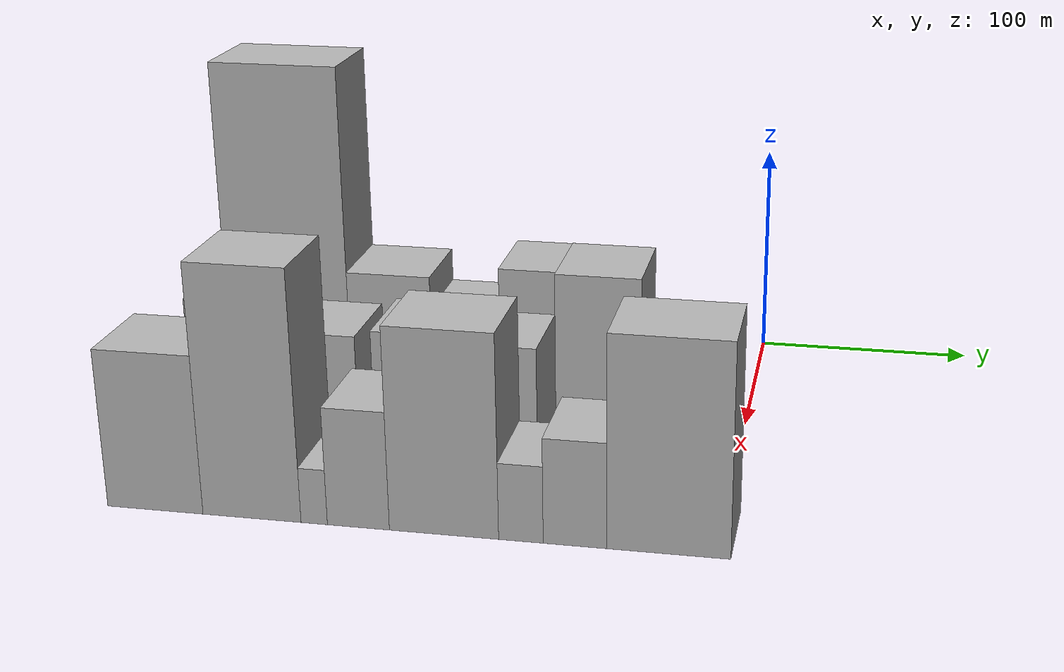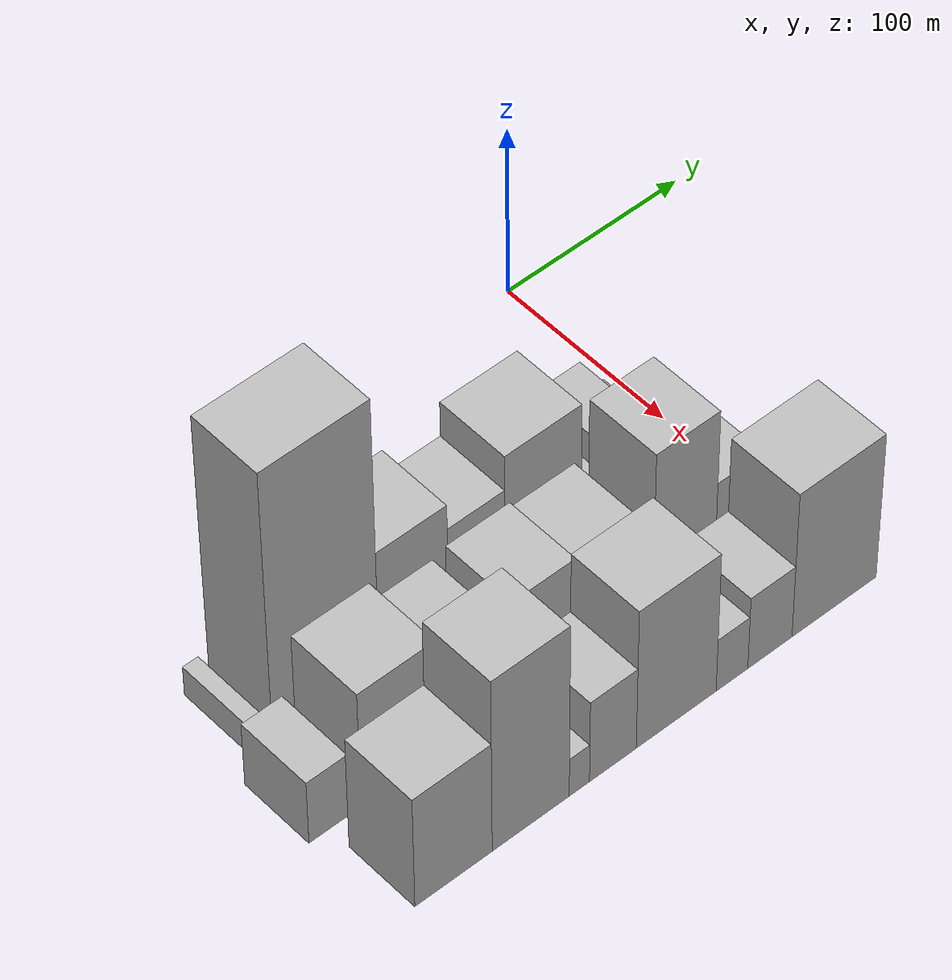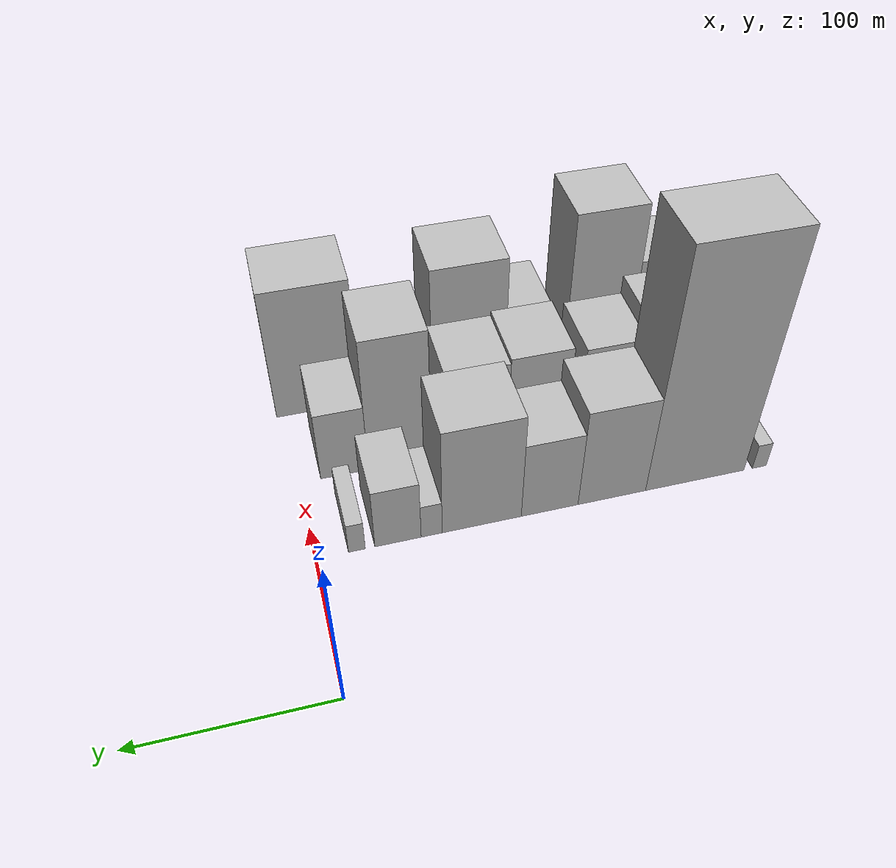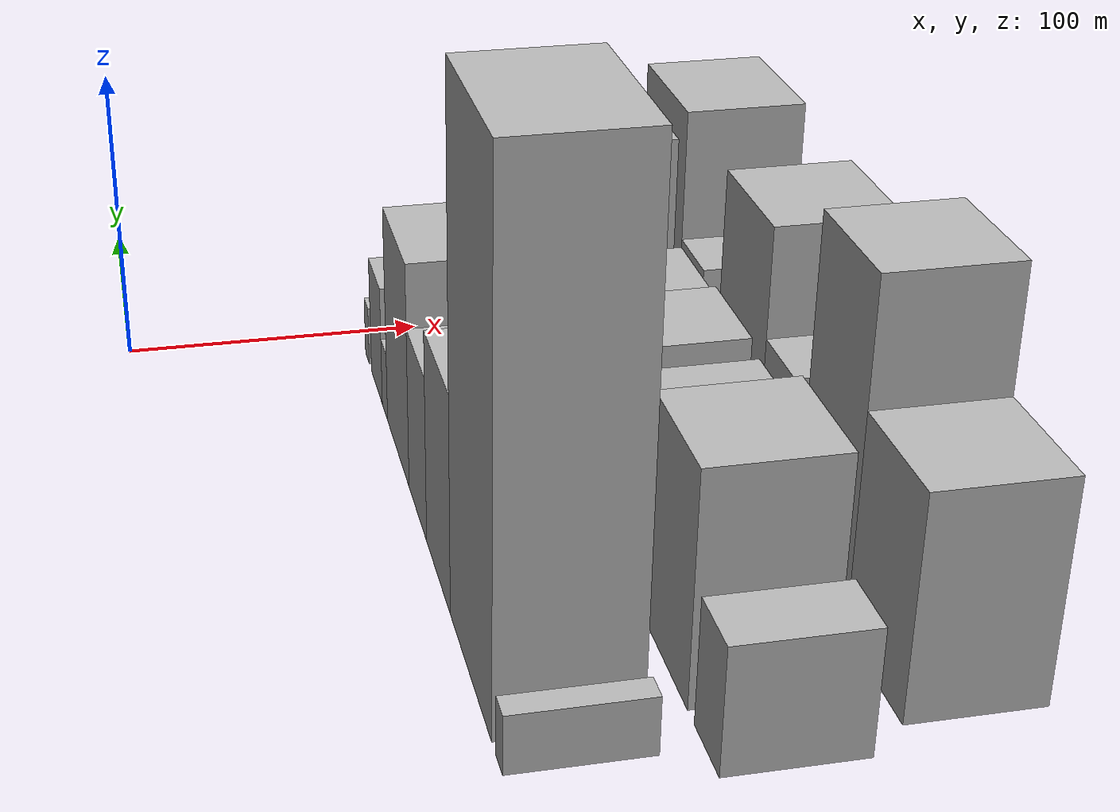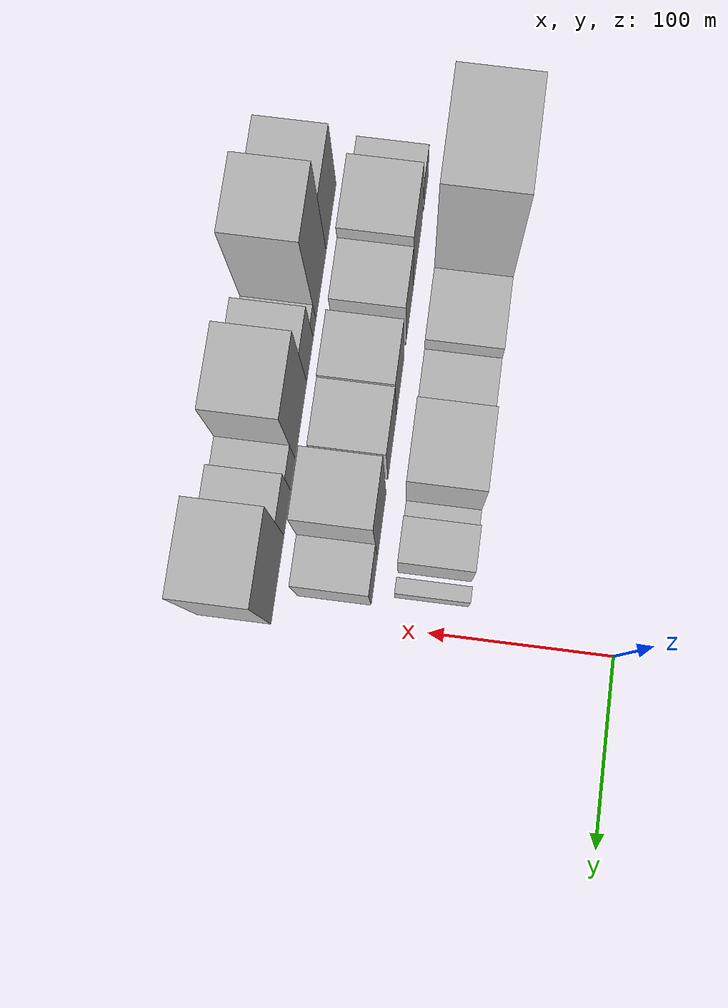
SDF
<sdf version="1.6">
 <world name="default">
  <model name="building_9">
   <static>1</static>
   <pose>100.0000 -244.5368 0 0.000000 0.000000 0.000000</pose>
   <link name="link">
    <pose>0 0 9.00 0 0 0</pose>
    <collision name="collision"><geometry><box><size>40.0000 8.2999 18.0000</size></box></geometry></collision>
    <visual name="visual">
     <cast_shadows>0</cast_shadows>
     <geometry><box><size>40.0000 8.2999 18.0000</size></box></geometry>
     <material>
      <script>
       <uri>model://HANNAS_wall/materials/scripts</uri>
       <uri>model://HANNAS_wall/materials/textures</uri>
       <name>vrc/HANNAS_wall</name>
      </script>
     </material>
    </visual>
   </link>
  </model>
  <model name="building_10">
   <static>1</static>
   <pose>100.0000 -206.7228 0 0.000000 0.000000 0.000000</pose>
   <link name="link">
    <pose>0 0 81.00 0 0 0</pose>
    <collision name="collision"><geometry><box><size>40.0000 57.3281 162.0000</size></box></geometry></collision>
    <visual name="visual">
     <cast_shadows>0</cast_shadows>
     <geometry><box><size>40.0000 57.3281 162.0000</size></box></geometry>
     <material>
      <script>
       <uri>model://HANNAS_wall/materials/scripts</uri>
       <uri>model://HANNAS_wall/materials/textures</uri>
       <name>vrc/HANNAS_wall</name>
      </script>
     </material>
    </visual>
   </link>
  </model>
  <model name="building_11">
   <static>1</static>
   <pose>100.0000 -158.9652 0 0.000000 0.000000 0.000000</pose>
   <link name="link">
    <pose>0 0 34.50 0 0 0</pose>
    <collision name="collision"><geometry><box><size>40.0000 38.1870 69.0000</size></box></geometry></collision>
    <visual name="visual">
     <cast_shadows>0</cast_shadows>
     <geometry><box><size>40.0000 38.1870 69.0000</size></box></geometry>
     <material>
      <script>
       <uri>model://HANNAS_wall/materials/scripts</uri>
       <uri>model://HANNAS_wall/materials/textures</uri>
       <name>vrc/HANNAS_wall</name>
      </script>
     </material>
    </visual>
   </link>
  </model>
  <model name="building_12">
   <static>1</static>
   <pose>100.0000 -124.1919 0 0.000000 0.000000 0.000000</pose>
   <link name="link">
    <pose>0 0 27.00 0 0 0</pose>
    <collision name="collision"><geometry><box><size>40.0000 31.3597 54.0000</size></box></geometry></collision>
    <visual name="visual">
     <cast_shadows>0</cast_shadows>
     <geometry><box><size>40.0000 31.3597 54.0000</size></box></geometry>
     <material>
      <script>
       <uri>model://HANNAS_wall/materials/scripts</uri>
       <uri>model://HANNAS_wall/materials/textures</uri>
       <name>vrc/HANNAS_wall</name>
      </script>
     </material>
    </visual>
   </link>
  </model>
  <model name="building_13">
   <static>1</static>
   <pose>100.0000 -87.1841 0 0.000000 0.000000 0.000000</pose>
   <link name="link">
    <pose>0 0 37.50 0 0 0</pose>
    <collision name="collision"><geometry><box><size>40.0000 42.6557 75.0000</size></box></geometry></collision>
    <visual name="visual">
     <cast_shadows>0</cast_shadows>
     <geometry><box><size>40.0000 42.6557 75.0000</size></box></geometry>
     <material>
      <script>
       <uri>model://HANNAS_wall/materials/scripts</uri>
       <uri>model://HANNAS_wall/materials/textures</uri>
       <name>vrc/HANNAS_wall</name>
      </script>
     </material>
    </visual>
   </link>
  </model>
  <model name="building_14">
   <static>1</static>
   <pose>100.0000 -60.2784 0 0.000000 0.000000 0.000000</pose>
   <link name="link">
    <pose>0 0 12.00 0 0 0</pose>
    <collision name="collision"><geometry><box><size>40.0000 11.1557 24.0000</size></box></geometry></collision>
    <visual name="visual">
     <cast_shadows>0</cast_shadows>
     <geometry><box><size>40.0000 11.1557 24.0000</size></box></geometry>
     <material>
      <script>
       <uri>model://HANNAS_wall/materials/scripts</uri>
       <uri>model://HANNAS_wall/materials/textures</uri>
       <name>vrc/HANNAS_wall</name>
      </script>
     </material>
    </visual>
   </link>
  </model>
  <model name="building_15">
   <static>1</static>
   <pose>100.0000 -42.5767 0 0.000000 0.000000 0.000000</pose>
   <link name="link">
    <pose>0 0 21.00 0 0 0</pose>
    <collision name="collision"><geometry><box><size>40.0000 24.2479 42.0000</size></box></geometry></collision>
    <visual name="visual">
     <cast_shadows>0</cast_shadows>
     <geometry><box><size>40.0000 24.2479 42.0000</size></box></geometry>
     <material>
      <script>
       <uri>model://HANNAS_wall/materials/scripts</uri>
       <uri>model://HANNAS_wall/materials/textures</uri>
       <name>vrc/HANNAS_wall</name>
      </script>
     </material>
    </visual>
   </link>
  </model>
  <model name="building_16">
   <static>1</static>
   <pose>100.0000 -21.1023 0 0.000000 0.000000 0.000000</pose>
   <link name="link">
    <pose>0 0 10.50 0 0 0</pose>
    <collision name="collision"><geometry><box><size>40.0000 8.7009 21.0000</size></box></geometry></collision>
    <visual name="visual">
     <cast_shadows>0</cast_shadows>
     <geometry><box><size>40.0000 8.7009 21.0000</size></box></geometry>
     <material>
      <script>
       <uri>model://HANNAS_wall/materials/scripts</uri>
       <uri>model://HANNAS_wall/materials/textures</uri>
       <name>vrc/HANNAS_wall</name>
      </script>
     </material>
    </visual>
   </link>
  </model>
  <model name="building_39">
   <static>1</static>
   <pose>152.0000 -249.2636 0 0.000000 0.000000 0.000000</pose>
   <link name="link">
    <pose>0 0 19.50 0 0 0</pose>
    <collision name="collision"><geometry><box><size>40.0000 21.4550 39.0000</size></box></geometry></collision>
    <visual name="visual">
     <cast_shadows>0</cast_shadows>
     <geometry><box><size>40.0000 21.4550 39.0000</size></box></geometry>
     <material>
      <script>
       <uri>model://HANNAS_wall/materials/scripts</uri>
       <uri>model://HANNAS_wall/materials/textures</uri>
       <name>vrc/HANNAS_wall</name>
      </script>
     </material>
    </visual>
   </link>
  </model>
  <model name="building_40">
   <static>1</static>
   <pose>152.0000 -212.0736 0 0.000000 0.000000 0.000000</pose>
   <link name="link">
    <pose>0 0 36.00 0 0 0</pose>
    <collision name="collision"><geometry><box><size>40.0000 40.9250 72.0000</size></box></geometry></collision>
    <visual name="visual">
     <cast_shadows>0</cast_shadows>
     <geometry><box><size>40.0000 40.9250 72.0000</size></box></geometry>
     <material>
      <script>
       <uri>model://HANNAS_wall/materials/scripts</uri>
       <uri>model://HANNAS_wall/materials/textures</uri>
       <name>vrc/HANNAS_wall</name>
      </script>
     </material>
    </visual>
   </link>
  </model>
  <model name="building_41">
   <static>1</static>
   <pose>152.0000 -174.9117 0 0.000000 0.000000 0.000000</pose>
   <link name="link">
    <pose>0 0 30.00 0 0 0</pose>
    <collision name="collision"><geometry><box><size>40.0000 33.3990 60.0000</size></box></geometry></collision>
    <visual name="visual">
     <cast_shadows>0</cast_shadows>
     <geometry><box><size>40.0000 33.3990 60.0000</size></box></geometry>
     <material>
      <script>
       <uri>model://HANNAS_wall/materials/scripts</uri>
       <uri>model://HANNAS_wall/materials/textures</uri>
       <name>vrc/HANNAS_wall</name>
      </script>
     </material>
    </visual>
   </link>
  </model>
  <model name="building_42">
   <static>1</static>
   <pose>152.0000 -133.7987 0 0.000000 0.000000 0.000000</pose>
   <link name="link">
    <pose>0 0 31.50 0 0 0</pose>
    <collision name="collision"><geometry><box><size>40.0000 34.8270 63.0000</size></box></geometry></collision>
    <visual name="visual">
     <cast_shadows>0</cast_shadows>
     <geometry><box><size>40.0000 34.8270 63.0000</size></box></geometry>
     <material>
      <script>
       <uri>model://HANNAS_wall/materials/scripts</uri>
       <uri>model://HANNAS_wall/materials/textures</uri>
       <name>vrc/HANNAS_wall</name>
      </script>
     </material>
    </visual>
   </link>
  </model>
  <model name="building_43">
   <static>1</static>
   <pose>152.0000 -98.5936 0 0.000000 0.000000 0.000000</pose>
   <link name="link">
    <pose>0 0 30.00 0 0 0</pose>
    <collision name="collision"><geometry><box><size>40.0000 35.5831 60.0000</size></box></geometry></collision>
    <visual name="visual">
     <cast_shadows>0</cast_shadows>
     <geometry><box><size>40.0000 35.5831 60.0000</size></box></geometry>
     <material>
      <script>
       <uri>model://HANNAS_wall/materials/scripts</uri>
       <uri>model://HANNAS_wall/materials/textures</uri>
       <name>vrc/HANNAS_wall</name>
      </script>
     </material>
    </visual>
   </link>
  </model>
  <model name="building_44">
   <static>1</static>
   <pose>152.0000 -55.0811 0 0.000000 0.000000 0.000000</pose>
   <link name="link">
    <pose>0 0 46.50 0 0 0</pose>
    <collision name="collision"><geometry><box><size>40.0000 35.4419 93.0000</size></box></geometry></collision>
    <visual name="visual">
     <cast_shadows>0</cast_shadows>
     <geometry><box><size>40.0000 35.4419 93.0000</size></box></geometry>
     <material>
      <script>
       <uri>model://HANNAS_wall/materials/scripts</uri>
       <uri>model://HANNAS_wall/materials/textures</uri>
       <name>vrc/HANNAS_wall</name>
      </script>
     </material>
    </visual>
   </link>
  </model>
  <model name="building_45">
   <static>1</static>
   <pose>152.0000 -24.2012 0 0.000000 0.000000 0.000000</pose>
   <link name="link">
    <pose>0 0 24.00 0 0 0</pose>
    <collision name="collision"><geometry><box><size>40.0000 26.3179 48.0000</size></box></geometry></collision>
    <visual name="visual">
     <cast_shadows>0</cast_shadows>
     <geometry><box><size>40.0000 26.3179 48.0000</size></box></geometry>
     <material>
      <script>
       <uri>model://HANNAS_wall/materials/scripts</uri>
       <uri>model://HANNAS_wall/materials/textures</uri>
       <name>vrc/HANNAS_wall</name>
      </script>
     </material>
    </visual>
   </link>
  </model>
  <model name="building_70">
   <static>1</static>
   <pose>204.0000 -228.6432 0 0.000000 0.000000 0.000000</pose>
   <link name="link">
    <pose>0 0 34.50 0 0 0</pose>
    <collision name="collision"><geometry><box><size>40.0000 41.0106 69.0000</size></box></geometry></collision>
    <visual name="visual">
     <cast_shadows>0</cast_shadows>
     <geometry><box><size>40.0000 41.0106 69.0000</size></box></geometry>
     <material>
      <script>
       <uri>model://HANNAS_wall/materials/scripts</uri>
       <uri>model://HANNAS_wall/materials/textures</uri>
       <name>vrc/HANNAS_wall</name>
      </script>
     </material>
    </visual>
   </link>
  </model>
  <model name="building_71">
   <static>1</static>
   <pose>204.0000 -187.3996 0 0.000000 0.000000 0.000000</pose>
   <link name="link">
    <pose>0 0 54.00 0 0 0</pose>
    <collision name="collision"><geometry><box><size>40.0000 41.4765 108.0000</size></box></geometry></collision>
    <visual name="visual">
     <cast_shadows>0</cast_shadows>
     <geometry><box><size>40.0000 41.4765 108.0000</size></box></geometry>
     <material>
      <script>
       <uri>model://HANNAS_wall/materials/scripts</uri>
       <uri>model://HANNAS_wall/materials/textures</uri>
       <name>vrc/HANNAS_wall</name>
      </script>
     </material>
    </visual>
   </link>
  </model>
  <model name="building_72">
   <static>1</static>
   <pose>204.0000 -161.1612 0 0.000000 0.000000 0.000000</pose>
   <link name="link">
    <pose>0 0 12.00 0 0 0</pose>
    <collision name="collision"><geometry><box><size>40.0000 11.0003 24.0000</size></box></geometry></collision>
    <visual name="visual">
     <cast_shadows>0</cast_shadows>
     <geometry><box><size>40.0000 11.0003 24.0000</size></box></geometry>
     <material>
      <script>
       <uri>model://HANNAS_wall/materials/scripts</uri>
       <uri>model://HANNAS_wall/materials/textures</uri>
       <name>vrc/HANNAS_wall</name>
      </script>
     </material>
    </visual>
   </link>
  </model>
  <model name="building_73">
   <static>1</static>
   <pose>204.0000 -142.8271 0 0.000000 0.000000 0.000000</pose>
   <link name="link">
    <pose>0 0 25.50 0 0 0</pose>
    <collision name="collision"><geometry><box><size>40.0000 25.6680 51.0000</size></box></geometry></collision>
    <visual name="visual">
     <cast_shadows>0</cast_shadows>
     <geometry><box><size>40.0000 25.6680 51.0000</size></box></geometry>
     <material>
      <script>
       <uri>model://HANNAS_wall/materials/scripts</uri>
       <uri>model://HANNAS_wall/materials/textures</uri>
       <name>vrc/HANNAS_wall</name>
      </script>
     </material>
    </visual>
   </link>
  </model>
  <model name="building_74">
   <static>1</static>
   <pose>204.0000 -107.7701 0 0.000000 0.000000 0.000000</pose>
   <link name="link">
    <pose>0 0 43.50 0 0 0</pose>
    <collision name="collision"><geometry><box><size>40.0000 44.4458 87.0000</size></box></geometry></collision>
    <visual name="visual">
     <cast_shadows>0</cast_shadows>
     <geometry><box><size>40.0000 44.4458 87.0000</size></box></geometry>
     <material>
      <script>
       <uri>model://HANNAS_wall/materials/scripts</uri>
       <uri>model://HANNAS_wall/materials/textures</uri>
       <name>vrc/HANNAS_wall</name>
      </script>
     </material>
    </visual>
   </link>
  </model>
  <model name="building_75">
   <static>1</static>
   <pose>204.0000 -76.6233 0 0.000000 0.000000 0.000000</pose>
   <link name="link">
    <pose>0 0 16.50 0 0 0</pose>
    <collision name="collision"><geometry><box><size>40.0000 17.8479 33.0000</size></box></geometry></collision>
    <visual name="visual">
     <cast_shadows>0</cast_shadows>
     <geometry><box><size>40.0000 17.8479 33.0000</size></box></geometry>
     <material>
      <script>
       <uri>model://HANNAS_wall/materials/scripts</uri>
       <uri>model://HANNAS_wall/materials/textures</uri>
       <name>vrc/HANNAS_wall</name>
      </script>
     </material>
    </visual>
   </link>
  </model>
  <model name="building_76">
   <static>1</static>
   <pose>204.0000 -55.1509 0 0.000000 0.000000 0.000000</pose>
   <link name="link">
    <pose>0 0 22.50 0 0 0</pose>
    <collision name="collision"><geometry><box><size>40.0000 25.0968 45.0000</size></box></geometry></collision>
    <visual name="visual">
     <cast_shadows>0</cast_shadows>
     <geometry><box><size>40.0000 25.0968 45.0000</size></box></geometry>
     <material>
      <script>
       <uri>model://HANNAS_wall/materials/scripts</uri>
       <uri>model://HANNAS_wall/materials/textures</uri>
       <name>vrc/HANNAS_wall</name>
      </script>
     </material>
    </visual>
   </link>
  </model>
  <model name="building_77">
   <static>1</static>
   <pose>204.0000 -18.3816 0 0.000000 0.000000 0.000000</pose>
   <link name="link">
    <pose>0 0 45.00 0 0 0</pose>
    <collision name="collision"><geometry><box><size>40.0000 48.4417 90.0000</size></box></geometry></collision>
    <visual name="visual">
     <cast_shadows>0</cast_shadows>
     <geometry><box><size>40.0000 48.4417 90.0000</size></box></geometry>
     <material>
      <script>
       <uri>model://HANNAS_wall/materials/scripts</uri>
       <uri>model://HANNAS_wall/materials/textures</uri>
       <name>vrc/HANNAS_wall</name>
      </script>
     </material>
    </visual>
   </link>
  </model>
 </world>
</sdf>
